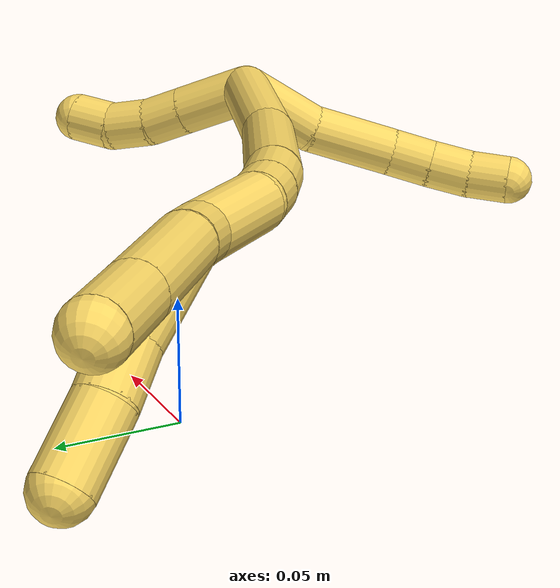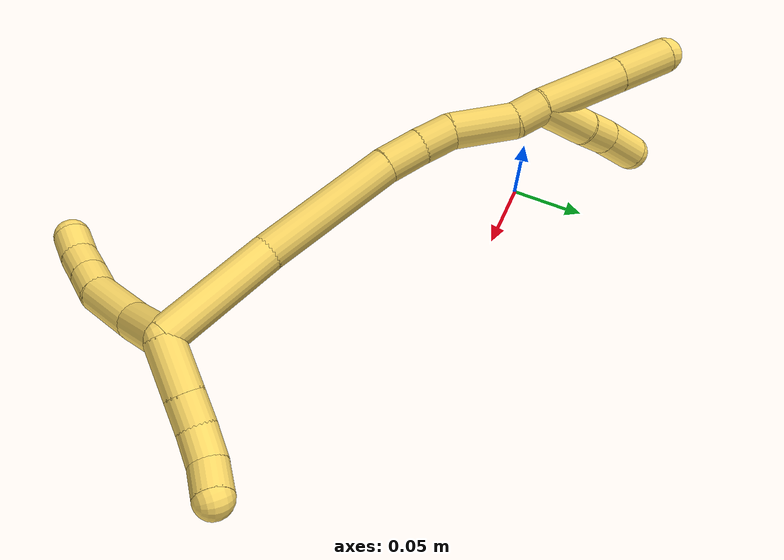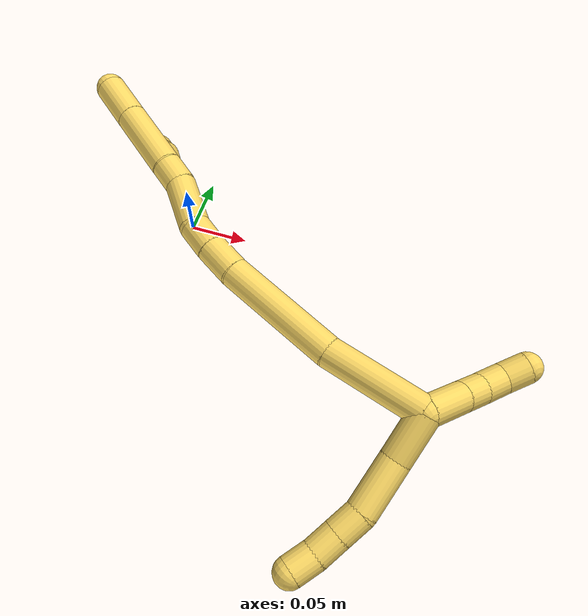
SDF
<sdf version="1.7">
 <world name="default">
  <model name="5">
   <static>0</static>
   <link name="5">
    <collision name="collision-cylinder-e_1_2_8">
     <pose>0.004504 -0.019657 0.001649 1.4871 0.224459 0.206551</pose>
     <geometry><cylinder><radius>0.0125</radius><length>0.040468</length></cylinder></geometry>
     <surface>
      <friction><ode><mu>1.16</mu><mu2>1.16</mu2><slip1>0</slip1><slip2>0</slip2></ode></friction>
      <contact><ode><kp>1e+06</kp><kd>1</kd><max_vel>0</max_vel><min_depth>0.001</min_depth></ode></contact>
     </surface>
    </collision>
    <visual name="visual-cylinder-e_1_2_8">
     <pose>0.004504 -0.019657 0.001649 1.4871 0.224459 0.206551</pose>
     <geometry><cylinder><radius>0.0125</radius><length>0.040468</length></cylinder></geometry>
     <material><ambient>1 0.858824 0.4 1</ambient></material>
    </visual>
    <collision name="collision-cylinder-e_2_8_9">
     <pose>0.009162 -0.061396 0.00777 1.37098 0.006863 0.005612</pose>
     <geometry><cylinder><radius>0.0125</radius><length>0.045061</length></cylinder></geometry>
     <surface>
      <friction><ode><mu>1.16</mu><mu2>1.16</mu2><slip1>0</slip1><slip2>0</slip2></ode></friction>
      <contact><ode><kp>1e+06</kp><kd>1</kd><max_vel>0</max_vel><min_depth>0.001</min_depth></ode></contact>
     </surface>
    </collision>
    <visual name="visual-cylinder-e_2_8_9">
     <pose>0.009162 -0.061396 0.00777 1.37098 0.006863 0.005612</pose>
     <geometry><cylinder><radius>0.0125</radius><length>0.045061</length></cylinder></geometry>
     <material><ambient>1 0.858824 0.4 1</ambient></material>
    </visual>
    <collision name="collision-cylinder-e_3_9_10">
     <pose>0.007823 -0.0944 0.011963 1.59631 -0.135818 -0.139317</pose>
     <geometry><cylinder><radius>0.0125</radius><length>0.022054</length></cylinder></geometry>
     <surface>
      <friction><ode><mu>1.16</mu><mu2>1.16</mu2><slip1>0</slip1><slip2>0</slip2></ode></friction>
      <contact><ode><kp>1e+06</kp><kd>1</kd><max_vel>0</max_vel><min_depth>0.001</min_depth></ode></contact>
     </surface>
    </collision>
    <visual name="visual-cylinder-e_3_9_10">
     <pose>0.007823 -0.0944 0.011963 1.59631 -0.135818 -0.139317</pose>
     <geometry><cylinder><radius>0.0125</radius><length>0.022054</length></cylinder></geometry>
     <material><ambient>1 0.858824 0.4 1</ambient></material>
    </visual>
    <collision name="collision-cylinder-e_4_10_11">
     <pose>0.004588 -0.115889 0.011604 1.57841 -0.16344 -0.164683</pose>
     <geometry><cylinder><radius>0.0125</radius><length>0.021419</length></cylinder></geometry>
     <surface>
      <friction><ode><mu>1.16</mu><mu2>1.16</mu2><slip1>0</slip1><slip2>0</slip2></ode></friction>
      <contact><ode><kp>1e+06</kp><kd>1</kd><max_vel>0</max_vel><min_depth>0.001</min_depth></ode></contact>
     </surface>
    </collision>
    <visual name="visual-cylinder-e_4_10_11">
     <pose>0.004588 -0.115889 0.011604 1.57841 -0.16344 -0.164683</pose>
     <geometry><cylinder><radius>0.0125</radius><length>0.021419</length></cylinder></geometry>
     <material><ambient>1 0.858824 0.4 1</ambient></material>
    </visual>
    <collision name="collision-cylinder-e_5_11_6">
     <pose>-0.000583 -0.136361 0.010924 1.63122 -0.332642 -0.352958</pose>
     <geometry><cylinder><radius>0.0125</radius><length>0.020998</length></cylinder></geometry>
     <surface>
      <friction><ode><mu>1.16</mu><mu2>1.16</mu2><slip1>0</slip1><slip2>0</slip2></ode></friction>
      <contact><ode><kp>1e+06</kp><kd>1</kd><max_vel>0</max_vel><min_depth>0.001</min_depth></ode></contact>
     </surface>
    </collision>
    <visual name="visual-cylinder-e_5_11_6">
     <pose>-0.000583 -0.136361 0.010924 1.63122 -0.332642 -0.352958</pose>
     <geometry><cylinder><radius>0.0125</radius><length>0.020998</length></cylinder></geometry>
     <material><ambient>1 0.858824 0.4 1</ambient></material>
    </visual>
    <collision name="collision-cylinder-e_1_2_12">
     <pose>0.012763 0.012819 -0.000867 -1.63829 0.782053 -0.830794</pose>
     <geometry><cylinder><radius>0.0125</radius><length>0.036221</length></cylinder></geometry>
     <surface>
      <friction><ode><mu>1.16</mu><mu2>1.16</mu2><slip1>0</slip1><slip2>0</slip2></ode></friction>
      <contact><ode><kp>1e+06</kp><kd>1</kd><max_vel>0</max_vel><min_depth>0.001</min_depth></ode></contact>
     </surface>
    </collision>
    <visual name="visual-cylinder-e_1_2_12">
     <pose>0.012763 0.012819 -0.000867 -1.63829 0.782053 -0.830794</pose>
     <geometry><cylinder><radius>0.0125</radius><length>0.036221</length></cylinder></geometry>
     <material><ambient>1 0.858824 0.4 1</ambient></material>
    </visual>
    <collision name="collision-cylinder-e_2_12_13">
     <pose>0.032815 0.032938 -0.00223 -1.63881 0.783584 -0.832781</pose>
     <geometry><cylinder><radius>0.0125</radius><length>0.020654</length></cylinder></geometry>
     <surface>
      <friction><ode><mu>1.16</mu><mu2>1.16</mu2><slip1>0</slip1><slip2>0</slip2></ode></friction>
      <contact><ode><kp>1e+06</kp><kd>1</kd><max_vel>0</max_vel><min_depth>0.001</min_depth></ode></contact>
     </surface>
    </collision>
    <visual name="visual-cylinder-e_2_12_13">
     <pose>0.032815 0.032938 -0.00223 -1.63881 0.783584 -0.832781</pose>
     <geometry><cylinder><radius>0.0125</radius><length>0.020654</length></cylinder></geometry>
     <material><ambient>1 0.858824 0.4 1</ambient></material>
    </visual>
    <collision name="collision-cylinder-e_3_13_14">
     <pose>0.046364 0.049068 -0.002213 -1.51257 0.615731 -0.582879</pose>
     <geometry><cylinder><radius>0.0125</radius><length>0.021675</length></cylinder></geometry>
     <surface>
      <friction><ode><mu>1.16</mu><mu2>1.16</mu2><slip1>0</slip1><slip2>0</slip2></ode></friction>
      <contact><ode><kp>1e+06</kp><kd>1</kd><max_vel>0</max_vel><min_depth>0.001</min_depth></ode></contact>
     </surface>
    </collision>
    <visual name="visual-cylinder-e_3_13_14">
     <pose>0.046364 0.049068 -0.002213 -1.51257 0.615731 -0.582879</pose>
     <geometry><cylinder><radius>0.0125</radius><length>0.021675</length></cylinder></geometry>
     <material><ambient>1 0.858824 0.4 1</ambient></material>
    </visual>
    <collision name="collision-cylinder-e_4_14_5">
     <pose>0.056115 0.067677 0.000996 -1.30194 0.331623 -0.253582</pose>
     <geometry><cylinder><radius>0.0125</radius><length>0.02145</length></cylinder></geometry>
     <surface>
      <friction><ode><mu>1.16</mu><mu2>1.16</mu2><slip1>0</slip1><slip2>0</slip2></ode></friction>
      <contact><ode><kp>1e+06</kp><kd>1</kd><max_vel>0</max_vel><min_depth>0.001</min_depth></ode></contact>
     </surface>
    </collision>
    <visual name="visual-cylinder-e_4_14_5">
     <pose>0.056115 0.067677 0.000996 -1.30194 0.331623 -0.253582</pose>
     <geometry><cylinder><radius>0.0125</radius><length>0.02145</length></cylinder></geometry>
     <material><ambient>1 0.858824 0.4 1</ambient></material>
    </visual>
    <collision name="collision-cylinder-e_1_2_15">
     <pose>-0.015232 -0.008394 -0.03805 2.92446 -0.372645 -2.09315</pose>
     <geometry><cylinder><radius>0.0125</radius><length>0.083672</length></cylinder></geometry>
     <surface>
      <friction><ode><mu>1.16</mu><mu2>1.16</mu2><slip1>0</slip1><slip2>0</slip2></ode></friction>
      <contact><ode><kp>1e+06</kp><kd>1</kd><max_vel>0</max_vel><min_depth>0.001</min_depth></ode></contact>
     </surface>
    </collision>
    <visual name="visual-cylinder-e_1_2_15">
     <pose>-0.015232 -0.008394 -0.03805 2.92446 -0.372645 -2.09315</pose>
     <geometry><cylinder><radius>0.0125</radius><length>0.083672</length></cylinder></geometry>
     <material><ambient>1 0.858824 0.4 1</ambient></material>
    </visual>
    <collision name="collision-cylinder-e_2_15_16">
     <pose>-0.051014 -0.019643 -0.120317 3.07712 -0.434278 -2.85129</pose>
     <geometry><cylinder><radius>0.0125</radius><length>0.097687</length></cylinder></geometry>
     <surface>
      <friction><ode><mu>1.16</mu><mu2>1.16</mu2><slip1>0</slip1><slip2>0</slip2></ode></friction>
      <contact><ode><kp>1e+06</kp><kd>1</kd><max_vel>0</max_vel><min_depth>0.001</min_depth></ode></contact>
     </surface>
    </collision>
    <visual name="visual-cylinder-e_2_15_16">
     <pose>-0.051014 -0.019643 -0.120317 3.07712 -0.434278 -2.85129</pose>
     <geometry><cylinder><radius>0.0125</radius><length>0.097687</length></cylinder></geometry>
     <material><ambient>1 0.858824 0.4 1</ambient></material>
    </visual>
    <collision name="collision-cylinder-e_3_16_17">
     <pose>-0.076525 -0.021848 -0.177681 -3.09221 -0.360348 2.87208</pose>
     <geometry><cylinder><radius>0.0125</radius><length>0.028134</length></cylinder></geometry>
     <surface>
      <friction><ode><mu>1.16</mu><mu2>1.16</mu2><slip1>0</slip1><slip2>0</slip2></ode></friction>
      <contact><ode><kp>1e+06</kp><kd>1</kd><max_vel>0</max_vel><min_depth>0.001</min_depth></ode></contact>
     </surface>
    </collision>
    <visual name="visual-cylinder-e_3_16_17">
     <pose>-0.076525 -0.021848 -0.177681 -3.09221 -0.360348 2.87208</pose>
     <geometry><cylinder><radius>0.0125</radius><length>0.028134</length></cylinder></geometry>
     <material><ambient>1 0.858824 0.4 1</ambient></material>
    </visual>
    <collision name="collision-cylinder-e_4_17_18">
     <pose>-0.085735 -0.019625 -0.202049 -3.00226 -0.358856 2.40708</pose>
     <geometry><cylinder><radius>0.0125</radius><length>0.024202</length></cylinder></geometry>
     <surface>
      <friction><ode><mu>1.16</mu><mu2>1.16</mu2><slip1>0</slip1><slip2>0</slip2></ode></friction>
      <contact><ode><kp>1e+06</kp><kd>1</kd><max_vel>0</max_vel><min_depth>0.001</min_depth></ode></contact>
     </surface>
    </collision>
    <visual name="visual-cylinder-e_4_17_18">
     <pose>-0.085735 -0.019625 -0.202049 -3.00226 -0.358856 2.40708</pose>
     <geometry><cylinder><radius>0.0125</radius><length>0.024202</length></cylinder></geometry>
     <material><ambient>1 0.858824 0.4 1</ambient></material>
    </visual>
    <collision name="collision-cylinder-e_5_18_19">
     <pose>-0.093315 -0.00988 -0.233628 -2.75989 -0.150616 0.744632</pose>
     <geometry><cylinder><radius>0.0125</radius><length>0.044377</length></cylinder></geometry>
     <surface>
      <friction><ode><mu>1.16</mu><mu2>1.16</mu2><slip1>0</slip1><slip2>0</slip2></ode></friction>
      <contact><ode><kp>1e+06</kp><kd>1</kd><max_vel>0</max_vel><min_depth>0.001</min_depth></ode></contact>
     </surface>
    </collision>
    <visual name="visual-cylinder-e_5_18_19">
     <pose>-0.093315 -0.00988 -0.233628 -2.75989 -0.150616 0.744632</pose>
     <geometry><cylinder><radius>0.0125</radius><length>0.044377</length></cylinder></geometry>
     <material><ambient>1 0.858824 0.4 1</ambient></material>
    </visual>
    <collision name="collision-cylinder-e_6_19_1">
     <pose>-0.101022 0.000118 -0.263872 -2.95892 -0.410741 2.31308</pose>
     <geometry><cylinder><radius>0.0125</radius><length>0.021928</length></cylinder></geometry>
     <surface>
      <friction><ode><mu>1.16</mu><mu2>1.16</mu2><slip1>0</slip1><slip2>0</slip2></ode></friction>
      <contact><ode><kp>1e+06</kp><kd>1</kd><max_vel>0</max_vel><min_depth>0.001</min_depth></ode></contact>
     </surface>
    </collision>
    <visual name="visual-cylinder-e_6_19_1">
     <pose>-0.101022 0.000118 -0.263872 -2.95892 -0.410741 2.31308</pose>
     <geometry><cylinder><radius>0.0125</radius><length>0.021928</length></cylinder></geometry>
     <material><ambient>1 0.858824 0.4 1</ambient></material>
    </visual>
    <collision name="collision-cylinder-e_1_1_20">
     <pose>-0.095898 0.004544 -0.2927 -3.00519 0.461195 -2.57534</pose>
     <geometry><cylinder><radius>0.0125</radius><length>0.042702</length></cylinder></geometry>
     <surface>
      <friction><ode><mu>1.16</mu><mu2>1.16</mu2><slip1>0</slip1><slip2>0</slip2></ode></friction>
      <contact><ode><kp>1e+06</kp><kd>1</kd><max_vel>0</max_vel><min_depth>0.001</min_depth></ode></contact>
     </surface>
    </collision>
    <visual name="visual-cylinder-e_1_1_20">
     <pose>-0.095898 0.004544 -0.2927 -3.00519 0.461195 -2.57534</pose>
     <geometry><cylinder><radius>0.0125</radius><length>0.042702</length></cylinder></geometry>
     <material><ambient>1 0.858824 0.4 1</ambient></material>
    </visual>
    <collision name="collision-cylinder-e_2_20_21">
     <pose>-0.081416 0.00704 -0.32252 3.13202 0.429334 3.09769</pose>
     <geometry><cylinder><radius>0.0125</radius><length>0.023928</length></cylinder></geometry>
     <surface>
      <friction><ode><mu>1.16</mu><mu2>1.16</mu2><slip1>0</slip1><slip2>0</slip2></ode></friction>
      <contact><ode><kp>1e+06</kp><kd>1</kd><max_vel>0</max_vel><min_depth>0.001</min_depth></ode></contact>
     </surface>
    </collision>
    <visual name="visual-cylinder-e_2_20_21">
     <pose>-0.081416 0.00704 -0.32252 3.13202 0.429334 3.09769</pose>
     <geometry><cylinder><radius>0.0125</radius><length>0.023928</length></cylinder></geometry>
     <material><ambient>1 0.858824 0.4 1</ambient></material>
    </visual>
    <collision name="collision-cylinder-e_3_21_4">
     <pose>-0.068321 0.008038 -0.347934 -3.06587 0.507952 -2.8518</pose>
     <geometry><cylinder><radius>0.0125</radius><length>0.03337</length></cylinder></geometry>
     <surface>
      <friction><ode><mu>1.16</mu><mu2>1.16</mu2><slip1>0</slip1><slip2>0</slip2></ode></friction>
      <contact><ode><kp>1e+06</kp><kd>1</kd><max_vel>0</max_vel><min_depth>0.001</min_depth></ode></contact>
     </surface>
    </collision>
    <visual name="visual-cylinder-e_3_21_4">
     <pose>-0.068321 0.008038 -0.347934 -3.06587 0.507952 -2.8518</pose>
     <geometry><cylinder><radius>0.0125</radius><length>0.03337</length></cylinder></geometry>
     <material><ambient>1 0.858824 0.4 1</ambient></material>
    </visual>
    <collision name="collision-cylinder-e_1_1_22">
     <pose>-0.114252 0.006735 -0.302453 -2.97616 -0.295379 2.1248</pose>
     <geometry><cylinder><radius>0.0125</radius><length>0.06082</length></cylinder></geometry>
     <surface>
      <friction><ode><mu>1.16</mu><mu2>1.16</mu2><slip1>0</slip1><slip2>0</slip2></ode></friction>
      <contact><ode><kp>1e+06</kp><kd>1</kd><max_vel>0</max_vel><min_depth>0.001</min_depth></ode></contact>
     </surface>
    </collision>
    <visual name="visual-cylinder-e_1_1_22">
     <pose>-0.114252 0.006735 -0.302453 -2.97616 -0.295379 2.1248</pose>
     <geometry><cylinder><radius>0.0125</radius><length>0.06082</length></cylinder></geometry>
     <material><ambient>1 0.858824 0.4 1</ambient></material>
    </visual>
    <collision name="collision-cylinder-e_2_22_3">
     <pose>-0.128863 0.014703 -0.349602 -2.97108 -0.298349 2.1075</pose>
     <geometry><cylinder><radius>0.0125</radius><length>0.03918</length></cylinder></geometry>
     <surface>
      <friction><ode><mu>1.16</mu><mu2>1.16</mu2><slip1>0</slip1><slip2>0</slip2></ode></friction>
      <contact><ode><kp>1e+06</kp><kd>1</kd><max_vel>0</max_vel><min_depth>0.001</min_depth></ode></contact>
     </surface>
    </collision>
    <visual name="visual-cylinder-e_2_22_3">
     <pose>-0.128863 0.014703 -0.349602 -2.97108 -0.298349 2.1075</pose>
     <geometry><cylinder><radius>0.0125</radius><length>0.03918</length></cylinder></geometry>
     <material><ambient>1 0.858824 0.4 1</ambient></material>
    </visual>
    <collision name="collision-sphere-3">
     <pose>-0.134621 0.017881 -0.368055 0 -0 0</pose>
     <geometry><sphere><radius>0.0125</radius></sphere></geometry>
     <surface>
      <friction><ode><mu>1.16</mu><mu2>1.16</mu2><slip1>0</slip1><slip2>0</slip2></ode></friction>
      <contact><ode><kp>1e+06</kp><kd>1</kd><max_vel>0</max_vel><min_depth>0.001</min_depth></ode></contact>
     </surface>
    </collision>
    <visual name="visual-sphere-3">
     <pose>-0.134621 0.017881 -0.368055 0 -0 0</pose>
     <geometry><sphere><radius>0.0125</radius></sphere></geometry>
     <material><ambient>1 0.858824 0.4 1</ambient></material>
    </visual>
    <collision name="collision-sphere-22">
     <pose>-0.123105 0.011526 -0.331149 0 -0 0</pose>
     <geometry><sphere><radius>0.0125</radius></sphere></geometry>
     <surface>
      <friction><ode><mu>1.16</mu><mu2>1.16</mu2><slip1>0</slip1><slip2>0</slip2></ode></friction>
      <contact><ode><kp>1e+06</kp><kd>1</kd><max_vel>0</max_vel><min_depth>0.001</min_depth></ode></contact>
     </surface>
    </collision>
    <visual name="visual-sphere-22">
     <pose>-0.123105 0.011526 -0.331149 0 -0 0</pose>
     <geometry><sphere><radius>0.0125</radius></sphere></geometry>
     <material><ambient>1 0.858824 0.4 1</ambient></material>
    </visual>
    <collision name="collision-sphere-4">
     <pose>-0.060205 0.009141 -0.362471 0 -0 0</pose>
     <geometry><sphere><radius>0.0125</radius></sphere></geometry>
     <surface>
      <friction><ode><mu>1.16</mu><mu2>1.16</mu2><slip1>0</slip1><slip2>0</slip2></ode></friction>
      <contact><ode><kp>1e+06</kp><kd>1</kd><max_vel>0</max_vel><min_depth>0.001</min_depth></ode></contact>
     </surface>
    </collision>
    <visual name="visual-sphere-4">
     <pose>-0.060205 0.009141 -0.362471 0 -0 0</pose>
     <geometry><sphere><radius>0.0125</radius></sphere></geometry>
     <material><ambient>1 0.858824 0.4 1</ambient></material>
    </visual>
    <collision name="collision-sphere-21">
     <pose>-0.076436 0.006936 -0.333398 0 -0 0</pose>
     <geometry><sphere><radius>0.0125</radius></sphere></geometry>
     <surface>
      <friction><ode><mu>1.16</mu><mu2>1.16</mu2><slip1>0</slip1><slip2>0</slip2></ode></friction>
      <contact><ode><kp>1e+06</kp><kd>1</kd><max_vel>0</max_vel><min_depth>0.001</min_depth></ode></contact>
     </surface>
    </collision>
    <visual name="visual-sphere-21">
     <pose>-0.076436 0.006936 -0.333398 0 -0 0</pose>
     <geometry><sphere><radius>0.0125</radius></sphere></geometry>
     <material><ambient>1 0.858824 0.4 1</ambient></material>
    </visual>
    <collision name="collision-sphere-20">
     <pose>-0.086397 0.007144 -0.311642 0 -0 0</pose>
     <geometry><sphere><radius>0.0125</radius></sphere></geometry>
     <surface>
      <friction><ode><mu>1.16</mu><mu2>1.16</mu2><slip1>0</slip1><slip2>0</slip2></ode></friction>
      <contact><ode><kp>1e+06</kp><kd>1</kd><max_vel>0</max_vel><min_depth>0.001</min_depth></ode></contact>
     </surface>
    </collision>
    <visual name="visual-sphere-20">
     <pose>-0.086397 0.007144 -0.311642 0 -0 0</pose>
     <geometry><sphere><radius>0.0125</radius></sphere></geometry>
     <material><ambient>1 0.858824 0.4 1</ambient></material>
    </visual>
    <collision name="collision-sphere-6">
     <pose>-0.004011 -0.146266 0.010325 0 -0 0</pose>
     <geometry><sphere><radius>0.0125</radius></sphere></geometry>
     <surface>
      <friction><ode><mu>1.16</mu><mu2>1.16</mu2><slip1>0</slip1><slip2>0</slip2></ode></friction>
      <contact><ode><kp>1e+06</kp><kd>1</kd><max_vel>0</max_vel><min_depth>0.001</min_depth></ode></contact>
     </surface>
    </collision>
    <visual name="visual-sphere-6">
     <pose>-0.004011 -0.146266 0.010325 0 -0 0</pose>
     <geometry><sphere><radius>0.0125</radius></sphere></geometry>
     <material><ambient>1 0.858824 0.4 1</ambient></material>
    </visual>
    <collision name="collision-sphere-11">
     <pose>0.002845 -0.126455 0.011524 0 -0 0</pose>
     <geometry><sphere><radius>0.0125</radius></sphere></geometry>
     <surface>
      <friction><ode><mu>1.16</mu><mu2>1.16</mu2><slip1>0</slip1><slip2>0</slip2></ode></friction>
      <contact><ode><kp>1e+06</kp><kd>1</kd><max_vel>0</max_vel><min_depth>0.001</min_depth></ode></contact>
     </surface>
    </collision>
    <visual name="visual-sphere-11">
     <pose>0.002845 -0.126455 0.011524 0 -0 0</pose>
     <geometry><sphere><radius>0.0125</radius></sphere></geometry>
     <material><ambient>1 0.858824 0.4 1</ambient></material>
    </visual>
    <collision name="collision-sphere-10">
     <pose>0.00633 -0.105322 0.011684 0 -0 0</pose>
     <geometry><sphere><radius>0.0125</radius></sphere></geometry>
     <surface>
      <friction><ode><mu>1.16</mu><mu2>1.16</mu2><slip1>0</slip1><slip2>0</slip2></ode></friction>
      <contact><ode><kp>1e+06</kp><kd>1</kd><max_vel>0</max_vel><min_depth>0.001</min_depth></ode></contact>
     </surface>
    </collision>
    <visual name="visual-sphere-10">
     <pose>0.00633 -0.105322 0.011684 0 -0 0</pose>
     <geometry><sphere><radius>0.0125</radius></sphere></geometry>
     <material><ambient>1 0.858824 0.4 1</ambient></material>
    </visual>
    <collision name="collision-sphere-9">
     <pose>0.009317 -0.083478 0.012242 0 -0 0</pose>
     <geometry><sphere><radius>0.0125</radius></sphere></geometry>
     <surface>
      <friction><ode><mu>1.16</mu><mu2>1.16</mu2><slip1>0</slip1><slip2>0</slip2></ode></friction>
      <contact><ode><kp>1e+06</kp><kd>1</kd><max_vel>0</max_vel><min_depth>0.001</min_depth></ode></contact>
     </surface>
    </collision>
    <visual name="visual-sphere-9">
     <pose>0.009317 -0.083478 0.012242 0 -0 0</pose>
     <geometry><sphere><radius>0.0125</radius></sphere></geometry>
     <material><ambient>1 0.858824 0.4 1</ambient></material>
    </visual>
    <collision name="collision-sphere-2">
     <geometry><sphere><radius>0.0125</radius></sphere></geometry>
     <surface>
      <friction><ode><mu>1.16</mu><mu2>1.16</mu2><slip1>0</slip1><slip2>0</slip2></ode></friction>
      <contact><ode><kp>1e+06</kp><kd>1</kd><max_vel>0</max_vel><min_depth>0.001</min_depth></ode></contact>
     </surface>
    </collision>
    <visual name="visual-sphere-2">
     <geometry><sphere><radius>0.0125</radius></sphere></geometry>
     <material><ambient>1 0.858824 0.4 1</ambient></material>
    </visual>
    <collision name="collision-sphere-19">
     <pose>-0.096644 -0.001708 -0.253987 0 -0 0</pose>
     <geometry><sphere><radius>0.0125</radius></sphere></geometry>
     <surface>
      <friction><ode><mu>1.16</mu><mu2>1.16</mu2><slip1>0</slip1><slip2>0</slip2></ode></friction>
      <contact><ode><kp>1e+06</kp><kd>1</kd><max_vel>0</max_vel><min_depth>0.001</min_depth></ode></contact>
     </surface>
    </collision>
    <visual name="visual-sphere-19">
     <pose>-0.096644 -0.001708 -0.253987 0 -0 0</pose>
     <geometry><sphere><radius>0.0125</radius></sphere></geometry>
     <material><ambient>1 0.858824 0.4 1</ambient></material>
    </visual>
    <collision name="collision-sphere-8">
     <pose>0.009007 -0.039315 0.003298 0 -0 0</pose>
     <geometry><sphere><radius>0.0125</radius></sphere></geometry>
     <surface>
      <friction><ode><mu>1.16</mu><mu2>1.16</mu2><slip1>0</slip1><slip2>0</slip2></ode></friction>
      <contact><ode><kp>1e+06</kp><kd>1</kd><max_vel>0</max_vel><min_depth>0.001</min_depth></ode></contact>
     </surface>
    </collision>
    <visual name="visual-sphere-8">
     <pose>0.009007 -0.039315 0.003298 0 -0 0</pose>
     <geometry><sphere><radius>0.0125</radius></sphere></geometry>
     <material><ambient>1 0.858824 0.4 1</ambient></material>
    </visual>
    <collision name="collision-sphere-12">
     <pose>0.025526 0.025639 -0.001733 0 -0 0</pose>
     <geometry><sphere><radius>0.0125</radius></sphere></geometry>
     <surface>
      <friction><ode><mu>1.16</mu><mu2>1.16</mu2><slip1>0</slip1><slip2>0</slip2></ode></friction>
      <contact><ode><kp>1e+06</kp><kd>1</kd><max_vel>0</max_vel><min_depth>0.001</min_depth></ode></contact>
     </surface>
    </collision>
    <visual name="visual-sphere-12">
     <pose>0.025526 0.025639 -0.001733 0 -0 0</pose>
     <geometry><sphere><radius>0.0125</radius></sphere></geometry>
     <material><ambient>1 0.858824 0.4 1</ambient></material>
    </visual>
    <collision name="collision-sphere-13">
     <pose>0.040104 0.040236 -0.002727 0 -0 0</pose>
     <geometry><sphere><radius>0.0125</radius></sphere></geometry>
     <surface>
      <friction><ode><mu>1.16</mu><mu2>1.16</mu2><slip1>0</slip1><slip2>0</slip2></ode></friction>
      <contact><ode><kp>1e+06</kp><kd>1</kd><max_vel>0</max_vel><min_depth>0.001</min_depth></ode></contact>
     </surface>
    </collision>
    <visual name="visual-sphere-13">
     <pose>0.040104 0.040236 -0.002727 0 -0 0</pose>
     <geometry><sphere><radius>0.0125</radius></sphere></geometry>
     <material><ambient>1 0.858824 0.4 1</ambient></material>
    </visual>
    <collision name="collision-sphere-14">
     <pose>0.052623 0.057901 -0.001698 0 -0 0</pose>
     <geometry><sphere><radius>0.0125</radius></sphere></geometry>
     <surface>
      <friction><ode><mu>1.16</mu><mu2>1.16</mu2><slip1>0</slip1><slip2>0</slip2></ode></friction>
      <contact><ode><kp>1e+06</kp><kd>1</kd><max_vel>0</max_vel><min_depth>0.001</min_depth></ode></contact>
     </surface>
    </collision>
    <visual name="visual-sphere-14">
     <pose>0.052623 0.057901 -0.001698 0 -0 0</pose>
     <geometry><sphere><radius>0.0125</radius></sphere></geometry>
     <material><ambient>1 0.858824 0.4 1</ambient></material>
    </visual>
    <collision name="collision-sphere-5">
     <pose>0.059606 0.077454 0.00369 0 -0 0</pose>
     <geometry><sphere><radius>0.0125</radius></sphere></geometry>
     <surface>
      <friction><ode><mu>1.16</mu><mu2>1.16</mu2><slip1>0</slip1><slip2>0</slip2></ode></friction>
      <contact><ode><kp>1e+06</kp><kd>1</kd><max_vel>0</max_vel><min_depth>0.001</min_depth></ode></contact>
     </surface>
    </collision>
    <visual name="visual-sphere-5">
     <pose>0.059606 0.077454 0.00369 0 -0 0</pose>
     <geometry><sphere><radius>0.0125</radius></sphere></geometry>
     <material><ambient>1 0.858824 0.4 1</ambient></material>
    </visual>
    <collision name="collision-sphere-15">
     <pose>-0.030463 -0.016788 -0.076099 0 -0 0</pose>
     <geometry><sphere><radius>0.0125</radius></sphere></geometry>
     <surface>
      <friction><ode><mu>1.16</mu><mu2>1.16</mu2><slip1>0</slip1><slip2>0</slip2></ode></friction>
      <contact><ode><kp>1e+06</kp><kd>1</kd><max_vel>0</max_vel><min_depth>0.001</min_depth></ode></contact>
     </surface>
    </collision>
    <visual name="visual-sphere-15">
     <pose>-0.030463 -0.016788 -0.076099 0 -0 0</pose>
     <geometry><sphere><radius>0.0125</radius></sphere></geometry>
     <material><ambient>1 0.858824 0.4 1</ambient></material>
    </visual>
    <collision name="collision-sphere-16">
     <pose>-0.071565 -0.022498 -0.164534 0 -0 0</pose>
     <geometry><sphere><radius>0.0125</radius></sphere></geometry>
     <surface>
      <friction><ode><mu>1.16</mu><mu2>1.16</mu2><slip1>0</slip1><slip2>0</slip2></ode></friction>
      <contact><ode><kp>1e+06</kp><kd>1</kd><max_vel>0</max_vel><min_depth>0.001</min_depth></ode></contact>
     </surface>
    </collision>
    <visual name="visual-sphere-16">
     <pose>-0.071565 -0.022498 -0.164534 0 -0 0</pose>
     <geometry><sphere><radius>0.0125</radius></sphere></geometry>
     <material><ambient>1 0.858824 0.4 1</ambient></material>
    </visual>
    <collision name="collision-sphere-17">
     <pose>-0.081485 -0.021198 -0.190829 0 -0 0</pose>
     <geometry><sphere><radius>0.0125</radius></sphere></geometry>
     <surface>
      <friction><ode><mu>1.16</mu><mu2>1.16</mu2><slip1>0</slip1><slip2>0</slip2></ode></friction>
      <contact><ode><kp>1e+06</kp><kd>1</kd><max_vel>0</max_vel><min_depth>0.001</min_depth></ode></contact>
     </surface>
    </collision>
    <visual name="visual-sphere-17">
     <pose>-0.081485 -0.021198 -0.190829 0 -0 0</pose>
     <geometry><sphere><radius>0.0125</radius></sphere></geometry>
     <material><ambient>1 0.858824 0.4 1</ambient></material>
    </visual>
    <collision name="collision-sphere-18">
     <pose>-0.089985 -0.018051 -0.21327 0 -0 0</pose>
     <geometry><sphere><radius>0.0125</radius></sphere></geometry>
     <surface>
      <friction><ode><mu>1.16</mu><mu2>1.16</mu2><slip1>0</slip1><slip2>0</slip2></ode></friction>
      <contact><ode><kp>1e+06</kp><kd>1</kd><max_vel>0</max_vel><min_depth>0.001</min_depth></ode></contact>
     </surface>
    </collision>
    <visual name="visual-sphere-18">
     <pose>-0.089985 -0.018051 -0.21327 0 -0 0</pose>
     <geometry><sphere><radius>0.0125</radius></sphere></geometry>
     <material><ambient>1 0.858824 0.4 1</ambient></material>
    </visual>
    <collision name="collision-sphere-1">
     <pose>-0.1054 0.001944 -0.273757 0 -0 0</pose>
     <geometry><sphere><radius>0.0125</radius></sphere></geometry>
     <surface>
      <friction><ode><mu>1.16</mu><mu2>1.16</mu2><slip1>0</slip1><slip2>0</slip2></ode></friction>
      <contact><ode><kp>1e+06</kp><kd>1</kd><max_vel>0</max_vel><min_depth>0.001</min_depth></ode></contact>
     </surface>
    </collision>
    <visual name="visual-sphere-1">
     <pose>-0.1054 0.001944 -0.273757 0 -0 0</pose>
     <geometry><sphere><radius>0.0125</radius></sphere></geometry>
     <material><ambient>1 0.858824 0.4 1</ambient></material>
    </visual>
    <inertial>
     <pose>-0.043947 -0.013146 -0.13846 0 -0 0</pose>
     <mass>0.75</mass>
     <inertia>
      <ixx>-0.000136</ixx>
      <ixy>0</ixy>
      <ixz>0</ixz>
      <iyy>9.9e-05</iyy>
      <iyz>0</iyz>
      <izz>3.6e-05</izz>
     </inertia>
    </inertial>
   </link>
   <pose>0.239784 -0.140995 0.061264 0.925178 1.07626 0.3345</pose>
  </model>
 </world>
</sdf>
